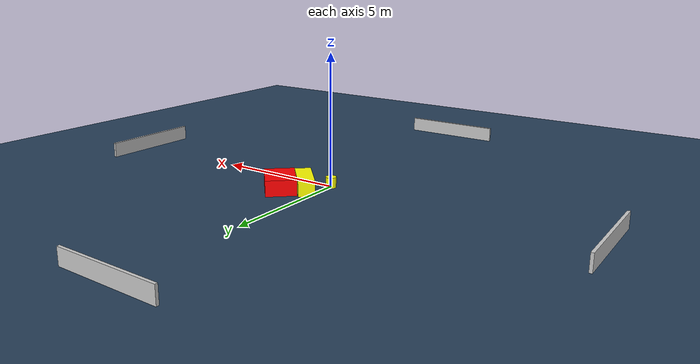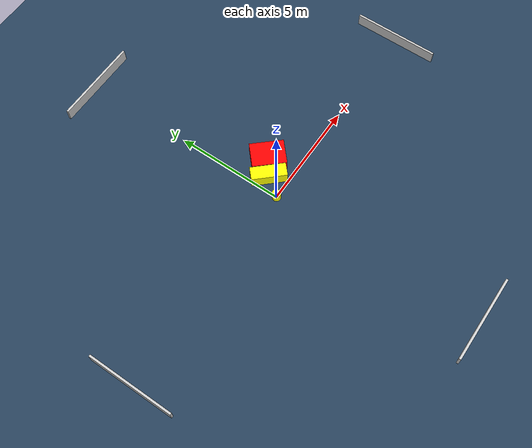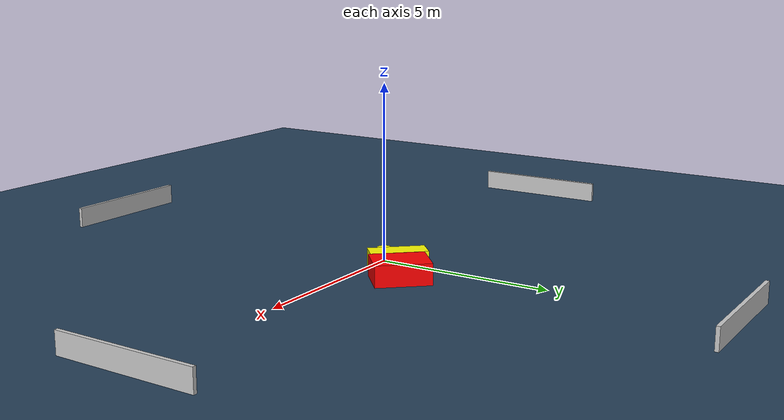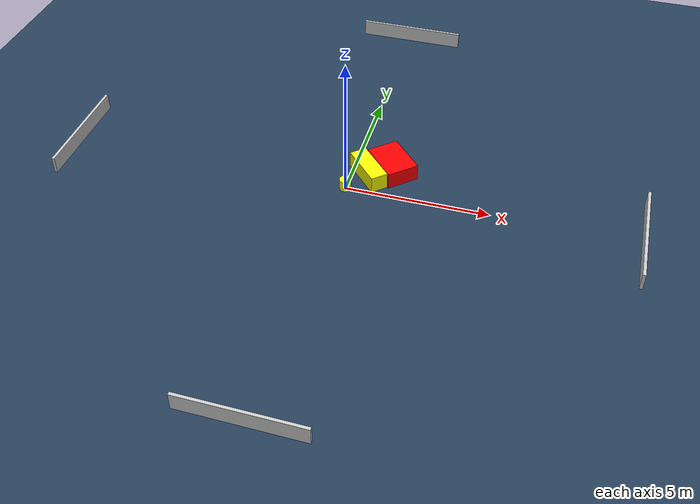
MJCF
<?xml version="1.0" ?>
<mujoco model="generated_environment">
  <option timestep="0.01" integrator="RK4" cone="elliptic"/>
  <default>
    <geom density="1"/>
  </default>
  <asset>
    <texture builtin="gradient" height="3072" name="skybox" rgb1="0.3 0.5 0.7" rgb2="0 0 0" type="skybox" width="512"/>
    <texture builtin="checker" height="300" name="groundplane" rgb1="0.2 0.3 0.4" rgb2="0.1 0.2 0.3" type="2d" width="300"/>
    <material name="groundplane" reflectance="0.2" texrepeat="5 5" texture="groundplane"/>
  </asset>
  <worldbody>
    <light dir="0 0 -1" directional="true" pos="0 0 1.5"/>
    <geom condim="3" friction="0.5 0.005 0.001" material="groundplane" name="floor" pos="0 0 0" size="0 0 0.05" type="plane"/>
    <body name="walls">
      <geom name="wall_1" condim="4" pos="-10.0 0.0 0.3" rgba="0.800000011920929 0.800000011920929 0.800000011920929 1.0" size="0.05 2.0 0.3" type="box"/>
      <geom name="wall_2" condim="4" pos="10.0 0.0 0.3" rgba="0.800000011920929 0.800000011920929 0.800000011920929 1.0" size="0.05 2.0 0.3" type="box"/>
      <geom name="wall_3" condim="4" pos="0.0 -10.0 0.3" rgba="0.800000011920929 0.800000011920929 0.800000011920929 1.0" size="2.0 0.05 0.3" type="box"/>
      <geom name="wall_4" condim="4" pos="0.0 10.0 0.3" rgba="0.800000011920929 0.800000011920929 0.800000011920929 1.0" size="2.0 0.05 0.3" type="box"/>
    </body>
    <body name="robot">
      <joint name="joint_x" type="slide" pos="0 0 0" axis="1 0 0"/>
      <joint name="joint_y" type="slide" pos="0 0 0" axis="0 1 0"/>
      <geom name="robot" type="cylinder" pos="0.0 0.0 0.2" size="0.2 0.2 0.0" mass="5.0" friction="1.0 0.005 0.0001" condim="4" rgba="1.0 1.0 0.0 1.0"/>
    </body>
    <body name="obstacle_1_movable">
      <geom name="obstacle_1_movable" condim="4" pos="0.6031746814580116 0.8275777523887964 0.3" euler="0 0 132.8161385796045" friction="0.0 0.005 0.001" rgba="1.0 1.0 0.0 1.0" size="0.7985647134755638 0.3052369480579774 0.3" type="box" mass="0.1"/>
      <joint type="free"/>
    </body>
    <body name="obstacle_2_static">
      <geom name="obstacle_2_static" condim="4" pos="1.3249554669906174 1.356527323340027 0.3" euler="0 0 42.18391773855872" friction="0.0 0.005 0.001" rgba="1.0 0.0 0.0 1.0" size="0.5714601908607986 0.7717248881175229 0.3" type="box"/>
    </body>
  </worldbody>
  <actuator>
    <motor name="actuator_x" joint="joint_x" gear="1" ctrlrange="-1 1"/>
    <motor name="actuator_y" joint="joint_y" gear="1" ctrlrange="-1 1"/>
  </actuator>
</mujoco>
